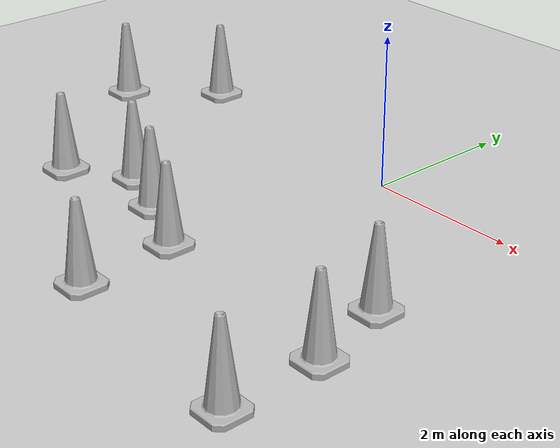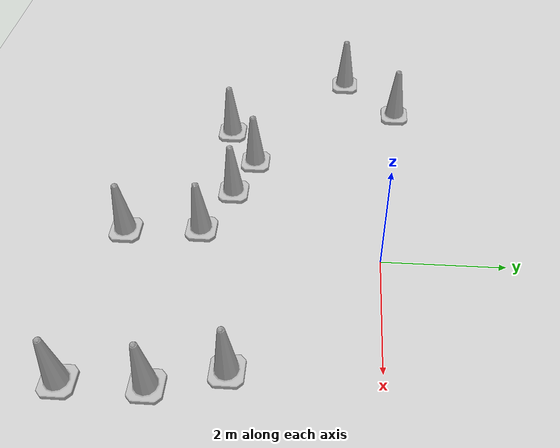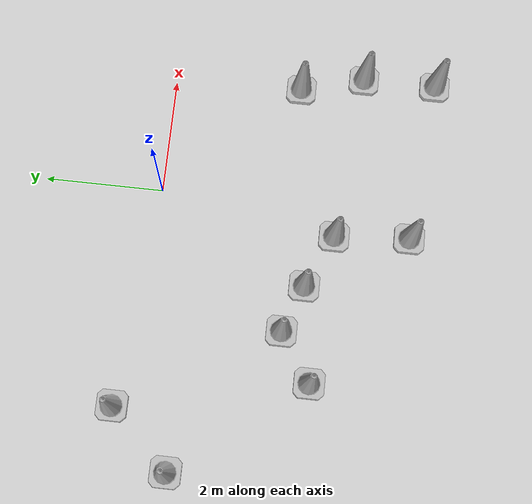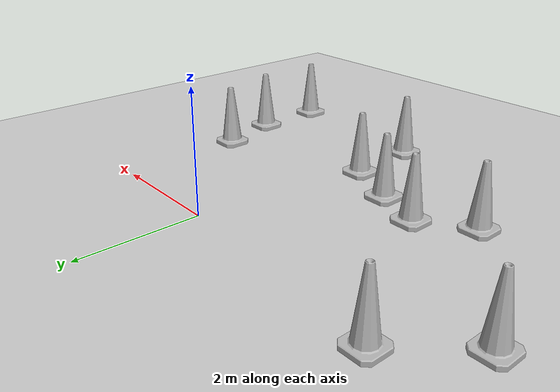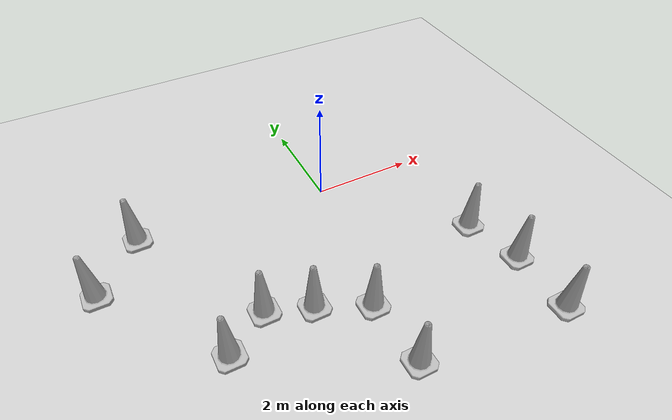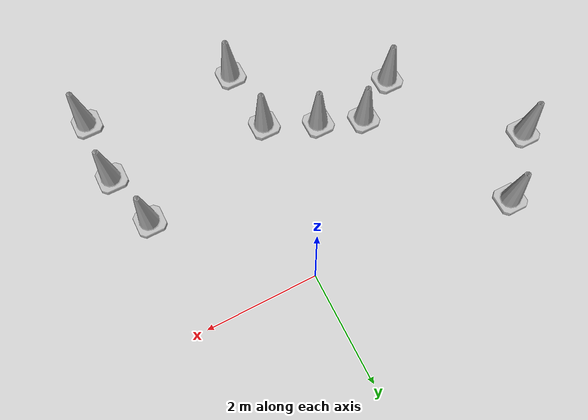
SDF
<sdf version="1.10">
 <world name="my_world">
  <physics name="1ms" type="ignored">
   <max_step_size>0.001</max_step_size>
   <real_time_factor>1.0</real_time_factor>
  </physics>
  <plugin filename="gz-sim-physics-system" name="gz::sim::systems::Physics"/>
  <plugin filename="gz-sim-user-commands-system" name="gz::sim::systems::UserCommands"/>
  <plugin filename="gz-sim-scene-broadcaster-system" name="gz::sim::systems::SceneBroadcaster"/>
  <light name="sun" type="directional">
   <pose>0 0 10 0 -0 0</pose>
   <diffuse>0.8 0.8 0.8 1</diffuse>
   <specular>0.2 0.2 0.2 1</specular>
   <attenuation>
    <range>1000</range>
    <constant>0.9</constant>
    <linear>0.01</linear>
    <quadratic>0.001</quadratic>
   </attenuation>
   <direction>-0.5 0.1 -0.9</direction>
   <spot><inner_angle>0</inner_angle><outer_angle>0</outer_angle><falloff>0</falloff></spot>
  </light>
  <model name="ground_plane">
   <static>true</static>
   <link name="link">
    <collision name="collision">
     <geometry><plane><normal>0 0 1</normal><size>100 100</size></plane></geometry>
    </collision>
    <visual name="visual">
     <geometry><plane><normal>0 0 1</normal><size>100 100</size></plane></geometry>
     <material>
      <ambient>0.8 0.8 0.8 1</ambient>
      <diffuse>0.8 0.8 0.8 1</diffuse>
      <specular>0.8 0.8 0.8 1</specular>
     </material>
    </visual>
   </link>
  </model>
  <include>
   <name>Construction Cone</name>
   <pose>-2.19745 -2.25046 0 0 -0 0</pose>
   <uri>model://construction_cone</uri>
  </include>
  <include>
   <name>Construction Cone_0</name>
   <pose>-1.40494 -2.55135 0 0 -0 0</pose>
   <uri>model://construction_cone</uri>
  </include>
  <include>
   <name>Construction Cone_1</name>
   <pose>-0.501986 -2.9745 0 0 -0 0</pose>
   <uri>model://construction_cone</uri>
  </include>
  <include>
   <name>Construction Cone_2</name>
   <pose>2.09724 -2.18232 0 0 -0 0</pose>
   <uri>model://construction_cone</uri>
  </include>
  <include>
   <name>Construction Cone_3</name>
   <pose>-3.69879 0.345038 0 0 -0 0</pose>
   <uri>model://construction_cone</uri>
  </include>
  <include>
   <name>Construction Cone_4</name>
   <pose>-0.406438 -4.23374 0 0 -0 0</pose>
   <uri>model://construction_cone</uri>
  </include>
  <include>
   <name>Construction Cone_5</name>
   <pose>2.38815 -3.2576 0 0 -0 0</pose>
   <uri>model://construction_cone</uri>
  </include>
  <include>
   <name>Construction Cone_6</name>
   <pose>2.39316 -4.49605 0 0 -0 0</pose>
   <uri>model://construction_cone</uri>
  </include>
  <include>
   <name>Construction Cone_7</name>
   <pose>-3.00495 -2.78053 0 0 -0 0</pose>
   <uri>model://construction_cone</uri>
  </include>
  <include>
   <name>Construction Cone_8</name>
   <pose>-4.64786 -0.646522 0 0 -0 0</pose>
   <uri>model://construction_cone</uri>
  </include>
 </world>
</sdf>

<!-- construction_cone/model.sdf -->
<sdf version="1.5">
  <model name="Construction Cone">
    <link name="link">
      <collision name="collision">
        <geometry>
          <mesh>
            <scale>10 10 10</scale>
            <uri>file://isr-testbed/construction_cone/meshes/construction_cone.dae</uri>
          </mesh>
        </geometry>
      </collision>
      <visual name="visual">
        <geometry>
          <mesh>
            <scale>10 10 10</scale>
            <uri>file://isr-testbed/construction_cone/meshes/construction_cone.dae</uri>
          </mesh>
        </geometry>
      </visual>
    </link>
  </model>
</sdf>
